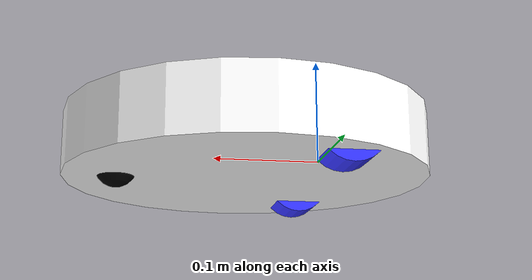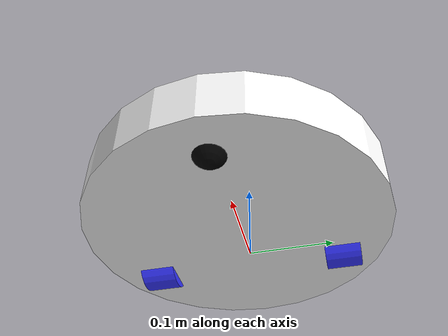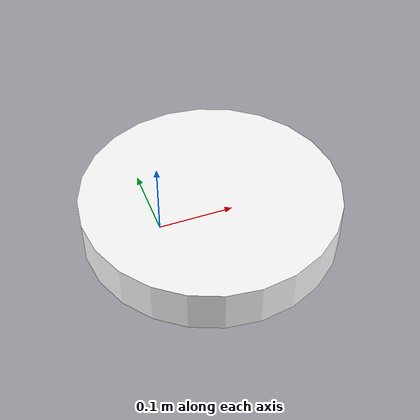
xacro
<?xml version="1.0"?>
<robot xmlns:xacro="http://www.ros.org/wiki/xacro">

    <xacro:include filename="inertial_macros.xacro"/>

    <!-- Materials definition -->

    <material name="white">
        <color rgba="1 1 1 1"/>
    </material>

    <material name="orange">
        <color rgba="1 0.3 0.1 1"/>
    </material>

    <material name="blue">
        <color rgba="0.2 0.2 1 1"/>
    </material>

    <material name="black">
        <color rgba="0 0 0 1"/>
    </material>

    <link name="base_link">

    </link>

    <joint name="chassis_joint" type="fixed">
        <parent link="base_link"/>
        <child link="chassis"/>
        <origin xyz="-0.08 0.0 0.0" rpy="0.0 0.0 0.0"/>

    </joint>

    <link name="chassis">
        <visual>
            <origin xyz="0.15 0.0 0.01"/>

            <geometry>
                <cylinder radius="0.17" length="0.06"/>
            </geometry>
            <material name="white"></material>
        </visual>
        <collision>
            <origin xyz="0.15 0.0 0.01"/>

            <geometry>
                <cylinder radius="0.17" length="0.06"/>
            </geometry>
        </collision>
        <xacro:inertial_cylinder mass="1" radius="0.17" length="0.06">
            <origin xyz="0.15 0.0 0.01" rpy="0.0 0.0 0.0"/>
        </xacro:inertial_cylinder>
    </link>

    <joint name="left_wheel_joint" type="continuous">
        <parent link="base_link"/>
        <child link="left_wheel"/>
        <origin xyz="0.0 0.11 0.0" rpy="-${pi/2} 0.0 0.0"/>
        <axis xyz="0.0 0.0 1"/>
    </joint>

    <link name="left_wheel">
        <visual>
            <geometry>
                <cylinder radius="0.03" length="0.04"/>
            </geometry>
            <material name="blue"></material>
        </visual>
        <collision>
            <geometry>
                <cylinder radius="0.03" length="0.04"/>
            </geometry>
        </collision>
        <xacro:inertial_cylinder mass="0.1" radius="0.03" length="0.04">
            <origin xyz="0.0 0.0 0.0" rpy="0.0 0.0 0.0"/>
        </xacro:inertial_cylinder>
    </link>

    <joint name="right_wheel_joint" type="continuous">
        <parent link="base_link"/>
        <child link="right_wheel"/>
        <origin xyz="0.0 -0.11 0.0" rpy="${pi/2} 0.0 0.0"/>
        <axis xyz="0.0 0.0 -1"/>
    </joint>

    <link name="right_wheel">
        <visual>
            <geometry>
                <cylinder radius="0.03" length="0.04"/>
            </geometry>
            <material name="blue"></material>
        </visual>
        <collision>
            <geometry>
                <cylinder radius="0.03" length="0.04"/>
            </geometry>
        </collision>
        <xacro:inertial_cylinder mass="0.1" radius="0.03" length="0.04">
            <origin xyz="0.0 0.0 0.0" rpy="0.0 0.0 0.0"/>
        </xacro:inertial_cylinder>
    </link>

    <joint name="caster_wheel" type="fixed">
        <parent link="chassis"/>
        <child link="caster_wheel"/>
        <origin xyz="0.27 0.0 -0.01" rpy="0.0 0.0 0.0"/>
    </joint>

    <link name="caster_wheel">
        <visual>
            <geometry>
                <sphere radius="0.02"/>
            </geometry>
            <material name="black">

            </material>
        </visual>
        <collision>
            <geometry>
                <sphere radius="0.02"/>
            </geometry>
        </collision>
        <xacro:inertial_sphere mass="0.1" radius="0.02">
            <origin xyz="0.0 0.0 0.0" rpy="0.0 0.0 0.0"/>
        </xacro:inertial_sphere>
    </link>

</robot>
